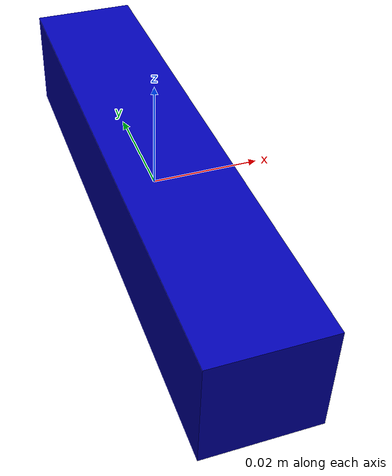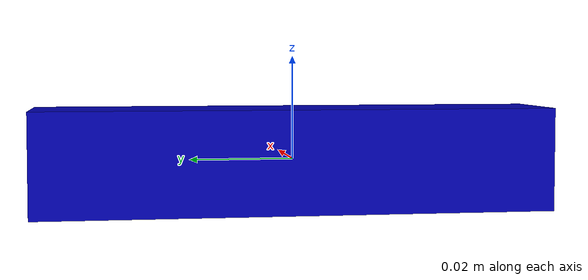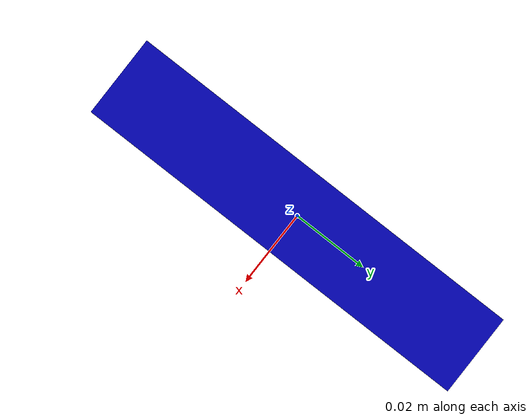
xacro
<?xml version="1.0"?>
<robot
     xmlns:xacro="http://www.ros.org/wiki/xacro" name="example_kinect">

  <!-- add a simulated Kinect camera, including visual, collision and inertial properties, and physics simulation-->
  <link name="kinect_link">
      <!-- here is the physical body (case) of the camera-->
      <collision>
          <origin xyz="0 0 0" rpy="0 0 0"/>
          <geometry>
              <box size="0.02 0.1 0.02"/>
          </geometry>
      </collision>

      <visual>
          <origin xyz="0 0 0" rpy="0 0 0" />
          <geometry>
              <box size="0.02 0.1 0.02"/>
          </geometry>
          <material name="camera_case">
              <color rgba="0.0 0.0 0.7 1.0"/>
          </material>
      </visual>

      <inertial>
          <mass value="0.1" />
          <origin xyz="0 0 0" rpy="0 0 0"/>
          <inertia ixx="0.0001" ixy="0" ixz="0" iyy="0.0001" iyz="0" izz="0.0001" />
      </inertial>
  </link>

 <!-- here is the gazebo plug-in to simulate a color camera -->
 <!--must refer to the above-defined link to place the camera in space-->
  <gazebo reference="kinect_link">
    <sensor type="depth" name="openni_camera_camera">
        <always_on>1</always_on>
        <visualize>true</visualize>
        <camera>
            <horizontal_fov>1.047</horizontal_fov>
            <image>
                <width>640</width>
                <height>480</height>
                <format>R8G8B8</format>
            </image>
            <depth_camera>

            </depth_camera>
            <clip>
                <near>0.1</near>
                <far>100</far>
            </clip>
        </camera>
      <!--here is the plug-in that does the work of kinect emulation-->
       <plugin name="camera_controller" filename="libgazebo_ros_openni_kinect.so">
            <alwaysOn>true</alwaysOn>
                <updateRate>10.0</updateRate>
                <cameraName>kinect</cameraName>
                <frameName>kinect_depth_frame</frameName>
            <imageTopicName>rgb/image_raw</imageTopicName>
            <depthImageTopicName>depth/image_raw</depthImageTopicName>
            <pointCloudTopicName>depth/points</pointCloudTopicName>
            <cameraInfoTopicName>rgb/camera_info</cameraInfoTopicName>
            <depthImageCameraInfoTopicName>depth/camera_info</depthImageCameraInfoTopicName>
            <pointCloudCutoff>0.4</pointCloudCutoff>
                <hackBaseline>0.07</hackBaseline>
                <distortionK1>0.0</distortionK1>
                <distortionK2>0.0</distortionK2>
                <distortionK3>0.0</distortionK3>
                <distortionT1>0.0</distortionT1>
                <distortionT2>0.0</distortionT2>
            <CxPrime>0.0</CxPrime>
            <Cx>0.0</Cx>
            <Cy>0.0</Cy>
            <focalLength>0.0</focalLength>
            </plugin>
    </sensor>
  </gazebo>

</robot>
